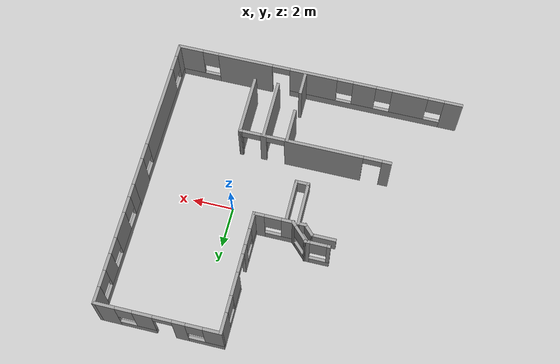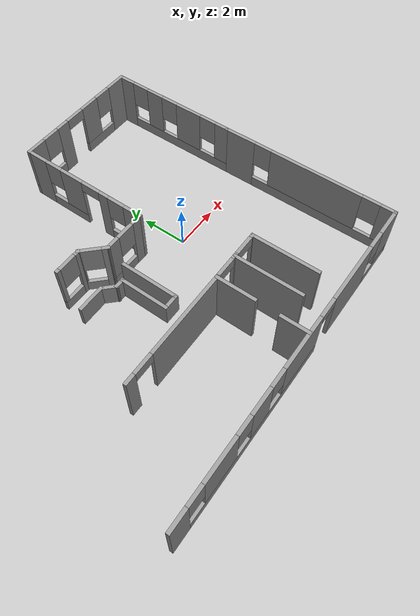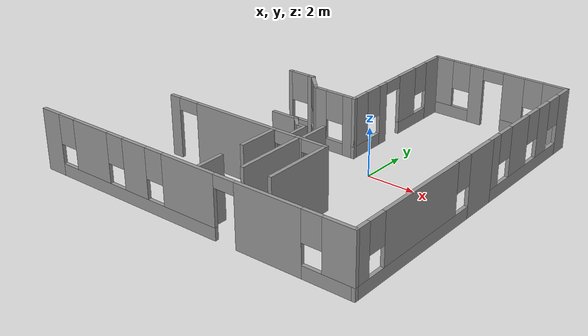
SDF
<sdf version="1.5">
 <model name="MeekinsHome">
  <pose>-5.07212 -0.075882 0 0 -0 0</pose>
  <link name="Wall_104">
   <collision name="Wall_104_Collision">
    <geometry><box><size>1.75 0.15 2.5</size></box></geometry>
    <pose>0 0 1.25 0 -0 0</pose>
   </collision>
   <visual name="Wall_104_Visual">
    <pose>0 0 1.25 0 -0 0</pose>
    <geometry><box><size>1.75 0.15 2.5</size></box></geometry>
    <material>
     <script><uri>file://media/materials/scripts/gazebo.material</uri><name>Gazebo/Grey</name></script>
     <ambient>1 1 1 1</ambient>
    </material>
   </visual>
   <pose>3.10129 -3.82166 0 0 0 -1.5708</pose>
  </link>
  <link name="Wall_106">
   <collision name="Wall_106_Collision">
    <geometry><box><size>1.25 0.15 2.5</size></box></geometry>
    <pose>0 0 1.25 0 -0 0</pose>
   </collision>
   <visual name="Wall_106_Visual">
    <pose>0 0 1.25 0 -0 0</pose>
    <geometry><box><size>1.25 0.15 2.5</size></box></geometry>
    <material>
     <script><uri>file://media/materials/scripts/gazebo.material</uri><name>Gazebo/Grey</name></script>
     <ambient>1 1 1 1</ambient>
    </material>
   </visual>
   <pose>3.07842 -6.2681 0 0 -0 1.5708</pose>
  </link>
  <link name="Wall_114">
   <collision name="Wall_114_Collision">
    <geometry><box><size>1.25 0.15 1</size></box></geometry>
    <pose>0 0 0.5 0 -0 0</pose>
   </collision>
   <visual name="Wall_114_Visual">
    <pose>0 0 0.5 0 -0 0</pose>
    <geometry><box><size>1.25 0.15 1</size></box></geometry>
    <material>
     <script><uri>file://media/materials/scripts/gazebo.material</uri><name>Gazebo/Grey</name></script>
     <ambient>1 1 1 1</ambient>
    </material>
   </visual>
   <pose>0.380121 0.838882 0 0 -0 0</pose>
  </link>
  <link name="Wall_115">
   <collision name="Wall_115_Collision">
    <geometry><box><size>0.75 0.15 1</size></box></geometry>
    <pose>0 0 0.5 0 -0 0</pose>
   </collision>
   <visual name="Wall_115_Visual">
    <pose>0 0 0.5 0 -0 0</pose>
    <geometry><box><size>0.75 0.15 1</size></box></geometry>
    <material>
     <script><uri>file://media/materials/scripts/gazebo.material</uri><name>Gazebo/Grey</name></script>
     <ambient>1 1 1 1</ambient>
    </material>
   </visual>
   <pose>1.14212 0.626382 0 0 0 -0.786576</pose>
  </link>
  <link name="Wall_116">
   <collision name="Wall_116_Collision">
    <geometry><box><size>0.5 0.15 1</size></box></geometry>
    <pose>0 0 0.5 0 -0 0</pose>
   </collision>
   <visual name="Wall_116_Visual">
    <pose>0 0 0.5 0 -0 0</pose>
    <geometry><box><size>0.5 0.15 1</size></box></geometry>
    <material>
     <script><uri>file://media/materials/scripts/gazebo.material</uri><name>Gazebo/Grey</name></script>
     <ambient>1 1 1 1</ambient>
    </material>
   </visual>
   <pose>1.52912 0.413882 0 0 -0 0</pose>
  </link>
  <link name="Wall_117">
   <collision name="Wall_117_Collision">
    <geometry><box><size>2.25 0.15 1</size></box></geometry>
    <pose>0 0 0.5 0 -0 0</pose>
   </collision>
   <visual name="Wall_117_Visual">
    <pose>0 0 0.5 0 -0 0</pose>
    <geometry><box><size>2.25 0.15 1</size></box></geometry>
    <material>
     <script><uri>file://media/materials/scripts/gazebo.material</uri><name>Gazebo/Grey</name></script>
     <ambient>1 1 1 1</ambient>
    </material>
   </visual>
   <pose>1.70412 -0.636118 0 0 0 -1.5708</pose>
  </link>
  <link name="Wall_120">
   <collision name="Wall_120_Collision">
    <geometry><box><size>0.75 0.15 1</size></box></geometry>
    <pose>0 0 0.5 0 -0 0</pose>
   </collision>
   <visual name="Wall_120_Visual">
    <pose>0 0 0.5 0 -0 0</pose>
    <geometry><box><size>0.75 0.15 1</size></box></geometry>
    <material>
     <script><uri>file://media/materials/scripts/gazebo.material</uri><name>Gazebo/Grey</name></script>
     <ambient>1 1 1 1</ambient>
    </material>
   </visual>
   <pose>2.00412 -1.68612 0 0 -0 0</pose>
  </link>
  <link name="Wall_121">
   <collision name="Wall_121_Collision">
    <geometry><box><size>2.75 0.15 1</size></box></geometry>
    <pose>0 0 0.5 0 -0 0</pose>
   </collision>
   <visual name="Wall_121_Visual">
    <pose>0 0 0.5 0 -0 0</pose>
    <geometry><box><size>2.75 0.15 1</size></box></geometry>
    <material>
     <script><uri>file://media/materials/scripts/gazebo.material</uri><name>Gazebo/Grey</name></script>
     <ambient>1 1 1 1</ambient>
    </material>
   </visual>
   <pose>2.30412 -0.386118 0 0 -0 1.5708</pose>
  </link>
  <link name="Wall_20">
   <pose>6.60282 6.85 0 0 -0 3.14159</pose>
   <visual name="Wall_20_Visual_0">
    <pose>-2.47639 0 1.25 0 -0 0</pose>
    <geometry><box><size>1.04723 0.15 2.5</size></box></geometry>
    <material>
     <script><uri>file://media/materials/scripts/gazebo.material</uri><name>Gazebo/Grey</name></script>
     <ambient>1 1 1 1</ambient>
    </material>
   </visual>
   <collision name="Wall_20_Collision_0">
    <geometry><box><size>1.04723 0.15 2.5</size></box></geometry>
    <pose>-2.47639 0 1.25 0 -0 0</pose>
   </collision>
   <visual name="Wall_20_Visual_1">
    <pose>0.986325 0 1.25 0 -0 0</pose>
    <geometry><box><size>0.61692 0.15 2.5</size></box></geometry>
    <material>
     <script><uri>file://media/materials/scripts/gazebo.material</uri><name>Gazebo/Grey</name></script>
     <ambient>1 1 1 1</ambient>
    </material>
   </visual>
   <collision name="Wall_20_Collision_1">
    <geometry><box><size>0.61692 0.15 2.5</size></box></geometry>
    <pose>0.986325 0 1.25 0 -0 0</pose>
   </collision>
   <visual name="Wall_20_Visual_2">
    <pose>-1.08745 0 0.25 0 -0 0</pose>
    <geometry><box><size>1.73064 0.15 0.5</size></box></geometry>
    <material>
     <script><uri>file://media/materials/scripts/gazebo.material</uri><name>Gazebo/Grey</name></script>
     <ambient>1 1 1 1</ambient>
    </material>
   </visual>
   <collision name="Wall_20_Collision_2">
    <geometry><box><size>1.73064 0.15 0.5</size></box></geometry>
    <pose>-1.08745 0 0.25 0 -0 0</pose>
   </collision>
   <visual name="Wall_20_Visual_3">
    <pose>2.14739 0 0.25 0 -0 0</pose>
    <geometry><box><size>1.70521 0.15 0.5</size></box></geometry>
    <material>
     <script><uri>file://media/materials/scripts/gazebo.material</uri><name>Gazebo/Grey</name></script>
     <ambient>1 1 1 1</ambient>
    </material>
   </visual>
   <collision name="Wall_20_Collision_3">
    <geometry><box><size>1.70521 0.15 0.5</size></box></geometry>
    <pose>2.14739 0 0.25 0 -0 0</pose>
   </collision>
   <visual name="Wall_20_Visual_4">
    <pose>-0.687454 0 1.5 0 -0 0</pose>
    <geometry><box><size>0.930638 0.15 2</size></box></geometry>
    <material>
     <script><uri>file://media/materials/scripts/gazebo.material</uri><name>Gazebo/Grey</name></script>
     <ambient>1 1 1 1</ambient>
    </material>
   </visual>
   <collision name="Wall_20_Collision_4">
    <geometry><box><size>0.930638 0.15 2</size></box></geometry>
    <pose>-0.687454 0 1.5 0 -0 0</pose>
   </collision>
   <visual name="Wall_20_Visual_5">
    <pose>-0.687454 0 1.5 0 -0 0</pose>
    <geometry><box><size>0.930638 0.15 2</size></box></geometry>
    <material>
     <script><uri>file://media/materials/scripts/gazebo.material</uri><name>Gazebo/Grey</name></script>
     <ambient>1 1 1 1</ambient>
    </material>
   </visual>
   <collision name="Wall_20_Collision_5">
    <geometry><box><size>0.930638 0.15 2</size></box></geometry>
    <pose>-0.687454 0 1.5 0 -0 0</pose>
   </collision>
   <visual name="Wall_20_Visual_6">
    <pose>2.54739 0 1.5 0 -0 0</pose>
    <geometry><box><size>0.905215 0.15 2</size></box></geometry>
    <material>
     <script><uri>file://media/materials/scripts/gazebo.material</uri><name>Gazebo/Grey</name></script>
     <ambient>1 1 1 1</ambient>
    </material>
   </visual>
   <collision name="Wall_20_Collision_6">
    <geometry><box><size>0.905215 0.15 2</size></box></geometry>
    <pose>2.54739 0 1.5 0 -0 0</pose>
   </collision>
   <visual name="Wall_20_Visual_7">
    <pose>-1.55277 0 1.9 0 -0 0</pose>
    <geometry><box><size>0.8 0.15 1.2</size></box></geometry>
    <material>
     <script><uri>file://media/materials/scripts/gazebo.material</uri><name>Gazebo/Grey</name></script>
     <ambient>1 1 1 1</ambient>
    </material>
   </visual>
   <collision name="Wall_20_Collision_7">
    <geometry><box><size>0.8 0.15 1.2</size></box></geometry>
    <pose>-1.55277 0 1.9 0 -0 0</pose>
   </collision>
   <visual name="Wall_20_Visual_8">
    <pose>1.69478 0 1.9 0 -0 0</pose>
    <geometry><box><size>0.8 0.15 1.2</size></box></geometry>
    <material>
     <script><uri>file://media/materials/scripts/gazebo.material</uri><name>Gazebo/Grey</name></script>
     <ambient>1 1 1 1</ambient>
    </material>
   </visual>
   <collision name="Wall_20_Collision_8">
    <geometry><box><size>0.8 0.15 1.2</size></box></geometry>
    <pose>1.69478 0 1.9 0 -0 0</pose>
   </collision>
   <visual name="Wall_20_Visual_9">
    <pose>0.227865 0 2.25 0 -0 0</pose>
    <geometry><box><size>0.9 0.15 0.5</size></box></geometry>
    <material>
     <script><uri>file://media/materials/scripts/gazebo.material</uri><name>Gazebo/Grey</name></script>
     <ambient>1 1 1 1</ambient>
    </material>
   </visual>
   <collision name="Wall_20_Collision_9">
    <geometry><box><size>0.9 0.15 0.5</size></box></geometry>
    <pose>0.227865 0 2.25 0 -0 0</pose>
   </collision>
   <visual name="Wall_20_Visual_10">
    <pose>0.227865 0 2.25 0 -0 0</pose>
    <geometry><box><size>0.9 0.15 0.5</size></box></geometry>
    <material>
     <script><uri>file://media/materials/scripts/gazebo.material</uri><name>Gazebo/Grey</name></script>
     <ambient>1 1 1 1</ambient>
    </material>
   </visual>
   <collision name="Wall_20_Collision_10">
    <geometry><box><size>0.9 0.15 0.5</size></box></geometry>
    <pose>0.227865 0 2.25 0 -0 0</pose>
   </collision>
  </link>
  <link name="Wall_21">
   <pose>3.67782 3.925 0 0 0 -1.5708</pose>
   <visual name="Wall_21_Visual_0">
    <pose>-2.48051 0 1.25 0 -0 0</pose>
    <geometry><box><size>1.03897 0.15 2.5</size></box></geometry>
    <material>
     <script><uri>file://media/materials/scripts/gazebo.material</uri><name>Gazebo/Grey</name></script>
     <ambient>1 1 1 1</ambient>
    </material>
   </visual>
   <collision name="Wall_21_Collision_0">
    <geometry><box><size>1.03897 0.15 2.5</size></box></geometry>
    <pose>-2.48051 0 1.25 0 -0 0</pose>
   </collision>
   <visual name="Wall_21_Visual_1">
    <pose>1.10254 0 1.25 0 -0 0</pose>
    <geometry><box><size>0.459463 0.15 2.5</size></box></geometry>
    <material>
     <script><uri>file://media/materials/scripts/gazebo.material</uri><name>Gazebo/Grey</name></script>
     <ambient>1 1 1 1</ambient>
    </material>
   </visual>
   <collision name="Wall_21_Collision_1">
    <geometry><box><size>0.459463 0.15 2.5</size></box></geometry>
    <pose>1.10254 0 1.25 0 -0 0</pose>
   </collision>
   <visual name="Wall_21_Visual_2">
    <pose>-0.994108 0 0.25 0 -0 0</pose>
    <geometry><box><size>1.93384 0.15 0.5</size></box></geometry>
    <material>
     <script><uri>file://media/materials/scripts/gazebo.material</uri><name>Gazebo/Grey</name></script>
     <ambient>1 1 1 1</ambient>
    </material>
   </visual>
   <collision name="Wall_21_Collision_2">
    <geometry><box><size>1.93384 0.15 0.5</size></box></geometry>
    <pose>-0.994108 0 0.25 0 -0 0</pose>
   </collision>
   <visual name="Wall_21_Visual_3">
    <pose>2.16614 0 0.25 0 -0 0</pose>
    <geometry><box><size>1.66773 0.15 0.5</size></box></geometry>
    <material>
     <script><uri>file://media/materials/scripts/gazebo.material</uri><name>Gazebo/Grey</name></script>
     <ambient>1 1 1 1</ambient>
    </material>
   </visual>
   <collision name="Wall_21_Collision_3">
    <geometry><box><size>1.66773 0.15 0.5</size></box></geometry>
    <pose>2.16614 0 0.25 0 -0 0</pose>
   </collision>
   <visual name="Wall_21_Visual_4">
    <pose>-0.594108 0 1.5 0 -0 0</pose>
    <geometry><box><size>1.13384 0.15 2</size></box></geometry>
    <material>
     <script><uri>file://media/materials/scripts/gazebo.material</uri><name>Gazebo/Grey</name></script>
     <ambient>1 1 1 1</ambient>
    </material>
   </visual>
   <collision name="Wall_21_Collision_4">
    <geometry><box><size>1.13384 0.15 2</size></box></geometry>
    <pose>-0.594108 0 1.5 0 -0 0</pose>
   </collision>
   <visual name="Wall_21_Visual_5">
    <pose>-0.594108 0 1.5 0 -0 0</pose>
    <geometry><box><size>1.13384 0.15 2</size></box></geometry>
    <material>
     <script><uri>file://media/materials/scripts/gazebo.material</uri><name>Gazebo/Grey</name></script>
     <ambient>1 1 1 1</ambient>
    </material>
   </visual>
   <collision name="Wall_21_Collision_5">
    <geometry><box><size>1.13384 0.15 2</size></box></geometry>
    <pose>-0.594108 0 1.5 0 -0 0</pose>
   </collision>
   <visual name="Wall_21_Visual_6">
    <pose>2.56614 0 1.5 0 -0 0</pose>
    <geometry><box><size>0.867727 0.15 2</size></box></geometry>
    <material>
     <script><uri>file://media/materials/scripts/gazebo.material</uri><name>Gazebo/Grey</name></script>
     <ambient>1 1 1 1</ambient>
    </material>
   </visual>
   <collision name="Wall_21_Collision_6">
    <geometry><box><size>0.867727 0.15 2</size></box></geometry>
    <pose>2.56614 0 1.5 0 -0 0</pose>
   </collision>
   <visual name="Wall_21_Visual_7">
    <pose>-1.56103 0 1.9 0 -0 0</pose>
    <geometry><box><size>0.8 0.15 1.2</size></box></geometry>
    <material>
     <script><uri>file://media/materials/scripts/gazebo.material</uri><name>Gazebo/Grey</name></script>
     <ambient>1 1 1 1</ambient>
    </material>
   </visual>
   <collision name="Wall_21_Collision_7">
    <geometry><box><size>0.8 0.15 1.2</size></box></geometry>
    <pose>-1.56103 0 1.9 0 -0 0</pose>
   </collision>
   <visual name="Wall_21_Visual_8">
    <pose>1.73227 0 1.9 0 -0 0</pose>
    <geometry><box><size>0.8 0.15 1.2</size></box></geometry>
    <material>
     <script><uri>file://media/materials/scripts/gazebo.material</uri><name>Gazebo/Grey</name></script>
     <ambient>1 1 1 1</ambient>
    </material>
   </visual>
   <collision name="Wall_21_Collision_8">
    <geometry><box><size>0.8 0.15 1.2</size></box></geometry>
    <pose>1.73227 0 1.9 0 -0 0</pose>
   </collision>
   <visual name="Wall_21_Visual_9">
    <pose>0.42281 0 2.25 0 -0 0</pose>
    <geometry><box><size>0.9 0.15 0.5</size></box></geometry>
    <material>
     <script><uri>file://media/materials/scripts/gazebo.material</uri><name>Gazebo/Grey</name></script>
     <ambient>1 1 1 1</ambient>
    </material>
   </visual>
   <collision name="Wall_21_Collision_9">
    <geometry><box><size>0.9 0.15 0.5</size></box></geometry>
    <pose>0.42281 0 2.25 0 -0 0</pose>
   </collision>
   <visual name="Wall_21_Visual_10">
    <pose>0.42281 0 2.25 0 -0 0</pose>
    <geometry><box><size>0.9 0.15 0.5</size></box></geometry>
    <material>
     <script><uri>file://media/materials/scripts/gazebo.material</uri><name>Gazebo/Grey</name></script>
     <ambient>1 1 1 1</ambient>
    </material>
   </visual>
   <collision name="Wall_21_Collision_10">
    <geometry><box><size>0.9 0.15 0.5</size></box></geometry>
    <pose>0.42281 0 2.25 0 -0 0</pose>
   </collision>
  </link>
  <link name="Wall_23">
   <pose>9.52782 3.925 0 0 0 -1.5708</pose>
   <visual name="Wall_23_Visual_0">
    <pose>-2.58343 0 1.25 0 -0 0</pose>
    <geometry><box><size>0.833143 0.15 2.5</size></box></geometry>
    <material>
     <script><uri>file://media/materials/scripts/gazebo.material</uri><name>Gazebo/Grey</name></script>
     <ambient>1 1 1 1</ambient>
    </material>
   </visual>
   <collision name="Wall_23_Collision_0">
    <geometry><box><size>0.833143 0.15 2.5</size></box></geometry>
    <pose>-2.58343 0 1.25 0 -0 0</pose>
   </collision>
   <visual name="Wall_23_Visual_1">
    <pose>0.416571 0 0.25 0 -0 0</pose>
    <geometry><box><size>5.16686 0.15 0.5</size></box></geometry>
    <material>
     <script><uri>file://media/materials/scripts/gazebo.material</uri><name>Gazebo/Grey</name></script>
     <ambient>1 1 1 1</ambient>
    </material>
   </visual>
   <collision name="Wall_23_Collision_1">
    <geometry><box><size>5.16686 0.15 0.5</size></box></geometry>
    <pose>0.416571 0 0.25 0 -0 0</pose>
   </collision>
   <visual name="Wall_23_Visual_2">
    <pose>-0.954968 0 1.5 0 -0 0</pose>
    <geometry><box><size>0.823779 0.15 2</size></box></geometry>
    <material>
     <script><uri>file://media/materials/scripts/gazebo.material</uri><name>Gazebo/Grey</name></script>
     <ambient>1 1 1 1</ambient>
    </material>
   </visual>
   <collision name="Wall_23_Collision_2">
    <geometry><box><size>0.823779 0.15 2</size></box></geometry>
    <pose>-0.954968 0 1.5 0 -0 0</pose>
   </collision>
   <visual name="Wall_23_Visual_3">
    <pose>0.897513 0 1.5 0 -0 0</pose>
    <geometry><box><size>1.28118 0.15 2</size></box></geometry>
    <material>
     <script><uri>file://media/materials/scripts/gazebo.material</uri><name>Gazebo/Grey</name></script>
     <ambient>1 1 1 1</ambient>
    </material>
   </visual>
   <collision name="Wall_23_Collision_3">
    <geometry><box><size>1.28118 0.15 2</size></box></geometry>
    <pose>0.897513 0 1.5 0 -0 0</pose>
   </collision>
   <visual name="Wall_23_Visual_4">
    <pose>2.66905 0 1.5 0 -0 0</pose>
    <geometry><box><size>0.661896 0.15 2</size></box></geometry>
    <material>
     <script><uri>file://media/materials/scripts/gazebo.material</uri><name>Gazebo/Grey</name></script>
     <ambient>1 1 1 1</ambient>
    </material>
   </visual>
   <collision name="Wall_23_Collision_4">
    <geometry><box><size>0.661896 0.15 2</size></box></geometry>
    <pose>2.66905 0 1.5 0 -0 0</pose>
   </collision>
   <visual name="Wall_23_Visual_5">
    <pose>-1.76686 0 1.9 0 -0 0</pose>
    <geometry><box><size>0.8 0.15 1.2</size></box></geometry>
    <material>
     <script><uri>file://media/materials/scripts/gazebo.material</uri><name>Gazebo/Grey</name></script>
     <ambient>1 1 1 1</ambient>
    </material>
   </visual>
   <collision name="Wall_23_Collision_5">
    <geometry><box><size>0.8 0.15 1.2</size></box></geometry>
    <pose>-1.76686 0 1.9 0 -0 0</pose>
   </collision>
   <visual name="Wall_23_Visual_6">
    <pose>-0.143078 0 1.9 0 -0 0</pose>
    <geometry><box><size>0.8 0.15 1.2</size></box></geometry>
    <material>
     <script><uri>file://media/materials/scripts/gazebo.material</uri><name>Gazebo/Grey</name></script>
     <ambient>1 1 1 1</ambient>
    </material>
   </visual>
   <collision name="Wall_23_Collision_6">
    <geometry><box><size>0.8 0.15 1.2</size></box></geometry>
    <pose>-0.143078 0 1.9 0 -0 0</pose>
   </collision>
   <visual name="Wall_23_Visual_7">
    <pose>1.9381 0 1.9 0 -0 0</pose>
    <geometry><box><size>0.8 0.15 1.2</size></box></geometry>
    <material>
     <script><uri>file://media/materials/scripts/gazebo.material</uri><name>Gazebo/Grey</name></script>
     <ambient>1 1 1 1</ambient>
    </material>
   </visual>
   <collision name="Wall_23_Collision_7">
    <geometry><box><size>0.8 0.15 1.2</size></box></geometry>
    <pose>1.9381 0 1.9 0 -0 0</pose>
   </collision>
  </link>
  <link name="Wall_26">
   <pose>2.75282 1 0 0 -0 3.14159</pose>
   <visual name="Wall_26_Visual_0">
    <pose>-0.714146 0 1.25 0 -0 0</pose>
    <geometry><box><size>0.571708 0.15 2.5</size></box></geometry>
    <material>
     <script><uri>file://media/materials/scripts/gazebo.material</uri><name>Gazebo/Grey</name></script>
     <ambient>1 1 1 1</ambient>
    </material>
   </visual>
   <collision name="Wall_26_Collision_0">
    <geometry><box><size>0.571708 0.15 2.5</size></box></geometry>
    <pose>-0.714146 0 1.25 0 -0 0</pose>
   </collision>
   <visual name="Wall_26_Visual_1">
    <pose>0.285854 0 0.25 0 -0 0</pose>
    <geometry><box><size>1.42829 0.15 0.5</size></box></geometry>
    <material>
     <script><uri>file://media/materials/scripts/gazebo.material</uri><name>Gazebo/Grey</name></script>
     <ambient>1 1 1 1</ambient>
    </material>
   </visual>
   <collision name="Wall_26_Collision_1">
    <geometry><box><size>1.42829 0.15 0.5</size></box></geometry>
    <pose>0.285854 0 0.25 0 -0 0</pose>
   </collision>
   <visual name="Wall_26_Visual_2">
    <pose>0.685854 0 1.5 0 -0 0</pose>
    <geometry><box><size>0.628292 0.15 2</size></box></geometry>
    <material>
     <script><uri>file://media/materials/scripts/gazebo.material</uri><name>Gazebo/Grey</name></script>
     <ambient>1 1 1 1</ambient>
    </material>
   </visual>
   <collision name="Wall_26_Collision_2">
    <geometry><box><size>0.628292 0.15 2</size></box></geometry>
    <pose>0.685854 0 1.5 0 -0 0</pose>
   </collision>
   <visual name="Wall_26_Visual_3">
    <pose>-0.028292 0 1.9 0 -0 0</pose>
    <geometry><box><size>0.8 0.15 1.2</size></box></geometry>
    <material>
     <script><uri>file://media/materials/scripts/gazebo.material</uri><name>Gazebo/Grey</name></script>
     <ambient>1 1 1 1</ambient>
    </material>
   </visual>
   <collision name="Wall_26_Collision_3">
    <geometry><box><size>0.8 0.15 1.2</size></box></geometry>
    <pose>-0.028292 0 1.9 0 -0 0</pose>
   </collision>
  </link>
  <link name="Wall_28">
   <pose>1.43891 1.38891 0 0 -0 2.35619</pose>
   <visual name="Wall_28_Visual_0">
    <pose>-0.468358 0 1.25 0 -0 0</pose>
    <geometry><box><size>0.313283 0.15 2.5</size></box></geometry>
    <material>
     <script><uri>file://media/materials/scripts/gazebo.material</uri><name>Gazebo/Grey</name></script>
     <ambient>1 1 1 1</ambient>
    </material>
   </visual>
   <collision name="Wall_28_Collision_0">
    <geometry><box><size>0.313283 0.15 2.5</size></box></geometry>
    <pose>-0.468358 0 1.25 0 -0 0</pose>
   </collision>
   <visual name="Wall_28_Visual_1">
    <pose>0.156642 0 0.25 0 -0 0</pose>
    <geometry><box><size>0.936717 0.15 0.5</size></box></geometry>
    <material>
     <script><uri>file://media/materials/scripts/gazebo.material</uri><name>Gazebo/Grey</name></script>
     <ambient>1 1 1 1</ambient>
    </material>
   </visual>
   <collision name="Wall_28_Collision_1">
    <geometry><box><size>0.936717 0.15 0.5</size></box></geometry>
    <pose>0.156642 0 0.25 0 -0 0</pose>
   </collision>
   <visual name="Wall_28_Visual_2">
    <pose>0.556642 0 1.5 0 -0 0</pose>
    <geometry><box><size>0.136717 0.15 2</size></box></geometry>
    <material>
     <script><uri>file://media/materials/scripts/gazebo.material</uri><name>Gazebo/Grey</name></script>
     <ambient>1 1 1 1</ambient>
    </material>
   </visual>
   <collision name="Wall_28_Collision_2">
    <geometry><box><size>0.136717 0.15 2</size></box></geometry>
    <pose>0.556642 0 1.5 0 -0 0</pose>
   </collision>
   <visual name="Wall_28_Visual_3">
    <pose>0.088283 0 1.9 0 -0 0</pose>
    <geometry><box><size>0.8 0.15 1.2</size></box></geometry>
    <material>
     <script><uri>file://media/materials/scripts/gazebo.material</uri><name>Gazebo/Grey</name></script>
     <ambient>1 1 1 1</ambient>
    </material>
   </visual>
   <collision name="Wall_28_Collision_3">
    <geometry><box><size>0.8 0.15 1.2</size></box></geometry>
    <pose>0.088283 0 1.9 0 -0 0</pose>
   </collision>
  </link>
  <link name="Wall_29">
   <pose>0.5 1.77782 0 0 -0 3.14159</pose>
   <visual name="Wall_29_Visual_0">
    <pose>-0.486678 0 1.25 0 -0 0</pose>
    <geometry><box><size>0.276643 0.15 2.5</size></box></geometry>
    <material>
     <script><uri>file://media/materials/scripts/gazebo.material</uri><name>Gazebo/Grey</name></script>
     <ambient>1 1 1 1</ambient>
    </material>
   </visual>
   <collision name="Wall_29_Collision_0">
    <geometry><box><size>0.276643 0.15 2.5</size></box></geometry>
    <pose>-0.486678 0 1.25 0 -0 0</pose>
   </collision>
   <visual name="Wall_29_Visual_1">
    <pose>0.138322 0 0.25 0 -0 0</pose>
    <geometry><box><size>0.973357 0.15 0.5</size></box></geometry>
    <material>
     <script><uri>file://media/materials/scripts/gazebo.material</uri><name>Gazebo/Grey</name></script>
     <ambient>1 1 1 1</ambient>
    </material>
   </visual>
   <collision name="Wall_29_Collision_1">
    <geometry><box><size>0.973357 0.15 0.5</size></box></geometry>
    <pose>0.138322 0 0.25 0 -0 0</pose>
   </collision>
   <visual name="Wall_29_Visual_2">
    <pose>0.538322 0 1.5 0 -0 0</pose>
    <geometry><box><size>0.173357 0.15 2</size></box></geometry>
    <material>
     <script><uri>file://media/materials/scripts/gazebo.material</uri><name>Gazebo/Grey</name></script>
     <ambient>1 1 1 1</ambient>
    </material>
   </visual>
   <collision name="Wall_29_Collision_2">
    <geometry><box><size>0.173357 0.15 2</size></box></geometry>
    <pose>0.538322 0 1.5 0 -0 0</pose>
   </collision>
   <visual name="Wall_29_Visual_3">
    <pose>0.051643 0 1.9 0 -0 0</pose>
    <geometry><box><size>0.8 0.15 1.2</size></box></geometry>
    <material>
     <script><uri>file://media/materials/scripts/gazebo.material</uri><name>Gazebo/Grey</name></script>
     <ambient>1 1 1 1</ambient>
    </material>
   </visual>
   <collision name="Wall_29_Collision_3">
    <geometry><box><size>0.8 0.15 1.2</size></box></geometry>
    <pose>0.051643 0 1.9 0 -0 0</pose>
   </collision>
  </link>
  <link name="Wall_57">
   <pose>9.52782 -2.925 0 0 0 -1.5708</pose>
   <visual name="Wall_57_Visual_0">
    <pose>-3.24029 0 1.25 0 -0 0</pose>
    <geometry><box><size>1.51942 0.15 2.5</size></box></geometry>
    <material>
     <script><uri>file://media/materials/scripts/gazebo.material</uri><name>Gazebo/Grey</name></script>
     <ambient>1 1 1 1</ambient>
    </material>
   </visual>
   <collision name="Wall_57_Collision_0">
    <geometry><box><size>1.51942 0.15 2.5</size></box></geometry>
    <pose>-3.24029 0 1.25 0 -0 0</pose>
   </collision>
   <visual name="Wall_57_Visual_1">
    <pose>0.759712 0 0.25 0 -0 0</pose>
    <geometry><box><size>6.48058 0.15 0.5</size></box></geometry>
    <material>
     <script><uri>file://media/materials/scripts/gazebo.material</uri><name>Gazebo/Grey</name></script>
     <ambient>1 1 1 1</ambient>
    </material>
   </visual>
   <collision name="Wall_57_Collision_1">
    <geometry><box><size>6.48058 0.15 0.5</size></box></geometry>
    <pose>0.759712 0 0.25 0 -0 0</pose>
   </collision>
   <visual name="Wall_57_Visual_2">
    <pose>0.417986 0 1.5 0 -0 0</pose>
    <geometry><box><size>4.19712 0.15 2</size></box></geometry>
    <material>
     <script><uri>file://media/materials/scripts/gazebo.material</uri><name>Gazebo/Grey</name></script>
     <ambient>1 1 1 1</ambient>
    </material>
   </visual>
   <collision name="Wall_57_Collision_2">
    <geometry><box><size>4.19712 0.15 2</size></box></geometry>
    <pose>0.417986 0 1.5 0 -0 0</pose>
   </collision>
   <visual name="Wall_57_Visual_3">
    <pose>3.65827 0 1.5 0 -0 0</pose>
    <geometry><box><size>0.683452 0.15 2</size></box></geometry>
    <material>
     <script><uri>file://media/materials/scripts/gazebo.material</uri><name>Gazebo/Grey</name></script>
     <ambient>1 1 1 1</ambient>
    </material>
   </visual>
   <collision name="Wall_57_Collision_3">
    <geometry><box><size>0.683452 0.15 2</size></box></geometry>
    <pose>3.65827 0 1.5 0 -0 0</pose>
   </collision>
   <visual name="Wall_57_Visual_4">
    <pose>-2.08058 0 1.9 0 -0 0</pose>
    <geometry><box><size>0.8 0.15 1.2</size></box></geometry>
    <material>
     <script><uri>file://media/materials/scripts/gazebo.material</uri><name>Gazebo/Grey</name></script>
     <ambient>1 1 1 1</ambient>
    </material>
   </visual>
   <collision name="Wall_57_Collision_4">
    <geometry><box><size>0.8 0.15 1.2</size></box></geometry>
    <pose>-2.08058 0 1.9 0 -0 0</pose>
   </collision>
   <visual name="Wall_57_Visual_5">
    <pose>2.91655 0 1.9 0 -0 0</pose>
    <geometry><box><size>0.8 0.15 1.2</size></box></geometry>
    <material>
     <script><uri>file://media/materials/scripts/gazebo.material</uri><name>Gazebo/Grey</name></script>
     <ambient>1 1 1 1</ambient>
    </material>
   </visual>
   <collision name="Wall_57_Collision_5">
    <geometry><box><size>0.8 0.15 1.2</size></box></geometry>
    <pose>2.91655 0 1.9 0 -0 0</pose>
   </collision>
  </link>
  <link name="Wall_59">
   <pose>2.425 -6.85 0 0 -0 0</pose>
   <visual name="Wall_59_Visual_0">
    <pose>-6.7236 0 1.25 0 -0 0</pose>
    <geometry><box><size>0.908431 0.15 2.5</size></box></geometry>
    <material>
     <script><uri>file://media/materials/scripts/gazebo.material</uri><name>Gazebo/Grey</name></script>
     <ambient>1 1 1 1</ambient>
    </material>
   </visual>
   <collision name="Wall_59_Collision_0">
    <geometry><box><size>0.908431 0.15 2.5</size></box></geometry>
    <pose>-6.7236 0 1.25 0 -0 0</pose>
   </collision>
   <visual name="Wall_59_Visual_1">
    <pose>3.71545 0 1.25 0 -0 0</pose>
    <geometry><box><size>2.75408 0.15 2.5</size></box></geometry>
    <material>
     <script><uri>file://media/materials/scripts/gazebo.material</uri><name>Gazebo/Grey</name></script>
     <ambient>1 1 1 1</ambient>
    </material>
   </visual>
   <collision name="Wall_59_Collision_1">
    <geometry><box><size>2.75408 0.15 2.5</size></box></geometry>
    <pose>3.71545 0 1.25 0 -0 0</pose>
   </collision>
   <visual name="Wall_59_Visual_2">
    <pose>-2.41549 0 0.25 0 -0 0</pose>
    <geometry><box><size>7.70779 0.15 0.5</size></box></geometry>
    <material>
     <script><uri>file://media/materials/scripts/gazebo.material</uri><name>Gazebo/Grey</name></script>
     <ambient>1 1 1 1</ambient>
    </material>
   </visual>
   <collision name="Wall_59_Collision_2">
    <geometry><box><size>7.70779 0.15 0.5</size></box></geometry>
    <pose>-2.41549 0 0.25 0 -0 0</pose>
   </collision>
   <visual name="Wall_59_Visual_3">
    <pose>6.13516 0 0.25 0 -0 0</pose>
    <geometry><box><size>2.08532 0.15 0.5</size></box></geometry>
    <material>
     <script><uri>file://media/materials/scripts/gazebo.material</uri><name>Gazebo/Grey</name></script>
     <ambient>1 1 1 1</ambient>
    </material>
   </visual>
   <collision name="Wall_59_Collision_3">
    <geometry><box><size>2.08532 0.15 0.5</size></box></geometry>
    <pose>6.13516 0 0.25 0 -0 0</pose>
   </collision>
   <visual name="Wall_59_Visual_4">
    <pose>-4.58066 0 1.5 0 -0 0</pose>
    <geometry><box><size>1.77746 0.15 2</size></box></geometry>
    <material>
     <script><uri>file://media/materials/scripts/gazebo.material</uri><name>Gazebo/Grey</name></script>
     <ambient>1 1 1 1</ambient>
    </material>
   </visual>
   <collision name="Wall_59_Collision_4">
    <geometry><box><size>1.77746 0.15 2</size></box></geometry>
    <pose>-4.58066 0 1.5 0 -0 0</pose>
   </collision>
   <visual name="Wall_59_Visual_5">
    <pose>-2.3188 0 1.5 0 -0 0</pose>
    <geometry><box><size>1.14625 0.15 2</size></box></geometry>
    <material>
     <script><uri>file://media/materials/scripts/gazebo.material</uri><name>Gazebo/Grey</name></script>
     <ambient>1 1 1 1</ambient>
    </material>
   </visual>
   <collision name="Wall_59_Collision_5">
    <geometry><box><size>1.14625 0.15 2</size></box></geometry>
    <pose>-2.3188 0 1.5 0 -0 0</pose>
   </collision>
   <visual name="Wall_59_Visual_6">
    <pose>0.246367 0 1.5 0 -0 0</pose>
    <geometry><box><size>2.38408 0.15 2</size></box></geometry>
    <material>
     <script><uri>file://media/materials/scripts/gazebo.material</uri><name>Gazebo/Grey</name></script>
     <ambient>1 1 1 1</ambient>
    </material>
   </visual>
   <collision name="Wall_59_Collision_6">
    <geometry><box><size>2.38408 0.15 2</size></box></geometry>
    <pose>0.246367 0 1.5 0 -0 0</pose>
   </collision>
   <visual name="Wall_59_Visual_7">
    <pose>0.246367 0 1.5 0 -0 0</pose>
    <geometry><box><size>2.38408 0.15 2</size></box></geometry>
    <material>
     <script><uri>file://media/materials/scripts/gazebo.material</uri><name>Gazebo/Grey</name></script>
     <ambient>1 1 1 1</ambient>
    </material>
   </visual>
   <collision name="Wall_59_Collision_7">
    <geometry><box><size>2.38408 0.15 2</size></box></geometry>
    <pose>0.246367 0 1.5 0 -0 0</pose>
   </collision>
   <visual name="Wall_59_Visual_8">
    <pose>6.53516 0 1.5 0 -0 0</pose>
    <geometry><box><size>1.28532 0.15 2</size></box></geometry>
    <material>
     <script><uri>file://media/materials/scripts/gazebo.material</uri><name>Gazebo/Grey</name></script>
     <ambient>1 1 1 1</ambient>
    </material>
   </visual>
   <collision name="Wall_59_Collision_8">
    <geometry><box><size>1.28532 0.15 2</size></box></geometry>
    <pose>6.53516 0 1.5 0 -0 0</pose>
   </collision>
   <visual name="Wall_59_Visual_9">
    <pose>-5.86939 0 1.9 0 -0 0</pose>
    <geometry><box><size>0.8 0.15 1.2</size></box></geometry>
    <material>
     <script><uri>file://media/materials/scripts/gazebo.material</uri><name>Gazebo/Grey</name></script>
     <ambient>1 1 1 1</ambient>
    </material>
   </visual>
   <collision name="Wall_59_Collision_9">
    <geometry><box><size>0.8 0.15 1.2</size></box></geometry>
    <pose>-5.86939 0 1.9 0 -0 0</pose>
   </collision>
   <visual name="Wall_59_Visual_10">
    <pose>5.49249 0 1.9 0 -0 0</pose>
    <geometry><box><size>0.8 0.15 1.2</size></box></geometry>
    <material>
     <script><uri>file://media/materials/scripts/gazebo.material</uri><name>Gazebo/Grey</name></script>
     <ambient>1 1 1 1</ambient>
    </material>
   </visual>
   <collision name="Wall_59_Collision_10">
    <geometry><box><size>0.8 0.15 1.2</size></box></geometry>
    <pose>5.49249 0 1.9 0 -0 0</pose>
   </collision>
   <visual name="Wall_59_Visual_11">
    <pose>-3.29192 0 1.9 0 -0 0</pose>
    <geometry><box><size>0.8 0.15 1.2</size></box></geometry>
    <material>
     <script><uri>file://media/materials/scripts/gazebo.material</uri><name>Gazebo/Grey</name></script>
     <ambient>1 1 1 1</ambient>
    </material>
   </visual>
   <collision name="Wall_59_Collision_11">
    <geometry><box><size>0.8 0.15 1.2</size></box></geometry>
    <pose>-3.29192 0 1.9 0 -0 0</pose>
   </collision>
   <visual name="Wall_59_Visual_12">
    <pose>-1.34567 0 1.9 0 -0 0</pose>
    <geometry><box><size>0.8 0.15 1.2</size></box></geometry>
    <material>
     <script><uri>file://media/materials/scripts/gazebo.material</uri><name>Gazebo/Grey</name></script>
     <ambient>1 1 1 1</ambient>
    </material>
   </visual>
   <collision name="Wall_59_Collision_12">
    <geometry><box><size>0.8 0.15 1.2</size></box></geometry>
    <pose>-1.34567 0 1.9 0 -0 0</pose>
   </collision>
   <visual name="Wall_59_Visual_13">
    <pose>1.88841 0 2.25 0 -0 0</pose>
    <geometry><box><size>0.9 0.15 0.5</size></box></geometry>
    <material>
     <script><uri>file://media/materials/scripts/gazebo.material</uri><name>Gazebo/Grey</name></script>
     <ambient>1 1 1 1</ambient>
    </material>
   </visual>
   <collision name="Wall_59_Collision_13">
    <geometry><box><size>0.9 0.15 0.5</size></box></geometry>
    <pose>1.88841 0 2.25 0 -0 0</pose>
   </collision>
   <visual name="Wall_59_Visual_14">
    <pose>1.88841 0 2.25 0 -0 0</pose>
    <geometry><box><size>0.9 0.15 0.5</size></box></geometry>
    <material>
     <script><uri>file://media/materials/scripts/gazebo.material</uri><name>Gazebo/Grey</name></script>
     <ambient>1 1 1 1</ambient>
    </material>
   </visual>
   <collision name="Wall_59_Collision_14">
    <geometry><box><size>0.9 0.15 0.5</size></box></geometry>
    <pose>1.88841 0 2.25 0 -0 0</pose>
   </collision>
  </link>
  <link name="Wall_94">
   <pose>1.73767 -2.99879 0 0 -0 0</pose>
   <visual name="Wall_94_Visual_0">
    <pose>-3.5108 0 1.25 0 -0 0</pose>
    <geometry><box><size>0.47839 0.15 2.5</size></box></geometry>
    <material>
     <script><uri>file://media/materials/scripts/gazebo.material</uri><name>Gazebo/Grey</name></script>
     <ambient>1 1 1 1</ambient>
    </material>
   </visual>
   <collision name="Wall_94_Collision_0">
    <geometry><box><size>0.47839 0.15 2.5</size></box></geometry>
    <pose>-3.5108 0 1.25 0 -0 0</pose>
   </collision>
   <visual name="Wall_94_Visual_1">
    <pose>-0.454552 0 1.25 0 -0 0</pose>
    <geometry><box><size>3.83412 0.15 2.5</size></box></geometry>
    <material>
     <script><uri>file://media/materials/scripts/gazebo.material</uri><name>Gazebo/Grey</name></script>
     <ambient>1 1 1 1</ambient>
    </material>
   </visual>
   <collision name="Wall_94_Collision_1">
    <geometry><box><size>3.83412 0.15 2.5</size></box></geometry>
    <pose>-0.454552 0 1.25 0 -0 0</pose>
   </collision>
   <visual name="Wall_94_Visual_2">
    <pose>2.50713 0 1.25 0 -0 0</pose>
    <geometry><box><size>0.289247 0.15 2.5</size></box></geometry>
    <material>
     <script><uri>file://media/materials/scripts/gazebo.material</uri><name>Gazebo/Grey</name></script>
     <ambient>1 1 1 1</ambient>
    </material>
   </visual>
   <collision name="Wall_94_Collision_2">
    <geometry><box><size>0.289247 0.15 2.5</size></box></geometry>
    <pose>2.50713 0 1.25 0 -0 0</pose>
   </collision>
   <visual name="Wall_94_Visual_3">
    <pose>3.65088 0 1.25 0 -0 0</pose>
    <geometry><box><size>0.198247 0.15 2.5</size></box></geometry>
    <material>
     <script><uri>file://media/materials/scripts/gazebo.material</uri><name>Gazebo/Grey</name></script>
     <ambient>1 1 1 1</ambient>
    </material>
   </visual>
   <collision name="Wall_94_Collision_3">
    <geometry><box><size>0.198247 0.15 2.5</size></box></geometry>
    <pose>3.65088 0 1.25 0 -0 0</pose>
   </collision>
   <visual name="Wall_94_Visual_4">
    <pose>-2.82161 0 2.25 0 -0 0</pose>
    <geometry><box><size>0.9 0.15 0.5</size></box></geometry>
    <material>
     <script><uri>file://media/materials/scripts/gazebo.material</uri><name>Gazebo/Grey</name></script>
     <ambient>1 1 1 1</ambient>
    </material>
   </visual>
   <collision name="Wall_94_Collision_4">
    <geometry><box><size>0.9 0.15 0.5</size></box></geometry>
    <pose>-2.82161 0 2.25 0 -0 0</pose>
   </collision>
   <visual name="Wall_94_Visual_5">
    <pose>1.91251 0 2.25 0 -0 0</pose>
    <geometry><box><size>0.9 0.15 0.5</size></box></geometry>
    <material>
     <script><uri>file://media/materials/scripts/gazebo.material</uri><name>Gazebo/Grey</name></script>
     <ambient>1 1 1 1</ambient>
    </material>
   </visual>
   <collision name="Wall_94_Collision_5">
    <geometry><box><size>0.9 0.15 0.5</size></box></geometry>
    <pose>1.91251 0 2.25 0 -0 0</pose>
   </collision>
   <visual name="Wall_94_Visual_6">
    <pose>3.10175 0 2.25 0 -0 0</pose>
    <geometry><box><size>0.9 0.15 0.5</size></box></geometry>
    <material>
     <script><uri>file://media/materials/scripts/gazebo.material</uri><name>Gazebo/Grey</name></script>
     <ambient>1 1 1 1</ambient>
    </material>
   </visual>
   <collision name="Wall_94_Collision_6">
    <geometry><box><size>0.9 0.15 0.5</size></box></geometry>
    <pose>3.10175 0 2.25 0 -0 0</pose>
   </collision>
  </link>
  <link name="Wall_96">
   <collision name="Wall_96_Collision">
    <geometry><box><size>3 0.15 2.5</size></box></geometry>
    <pose>0 0 1.25 0 -0 0</pose>
   </collision>
   <visual name="Wall_96_Visual">
    <pose>0 0 1.25 0 -0 0</pose>
    <geometry><box><size>3 0.15 2.5</size></box></geometry>
    <material>
     <script><uri>file://media/materials/scripts/gazebo.material</uri><name>Gazebo/Grey</name></script>
     <ambient>1 1 1 1</ambient>
    </material>
   </visual>
   <pose>5.41267 -4.42379 0 0 0 -1.5708</pose>
  </link>
  <link name="Wall_98">
   <collision name="Wall_98_Collision">
    <geometry><box><size>3 0.15 2.5</size></box></geometry>
    <pose>0 0 1.25 0 -0 0</pose>
   </collision>
   <visual name="Wall_98_Visual">
    <pose>0 0 1.25 0 -0 0</pose>
    <geometry><box><size>3 0.15 2.5</size></box></geometry>
    <material>
     <script><uri>file://media/materials/scripts/gazebo.material</uri><name>Gazebo/Grey</name></script>
     <ambient>1 1 1 1</ambient>
    </material>
   </visual>
   <pose>4.2448 -4.44666 0 0 0 -1.5708</pose>
  </link>
  <static>1</static>
 </model>
</sdf>
